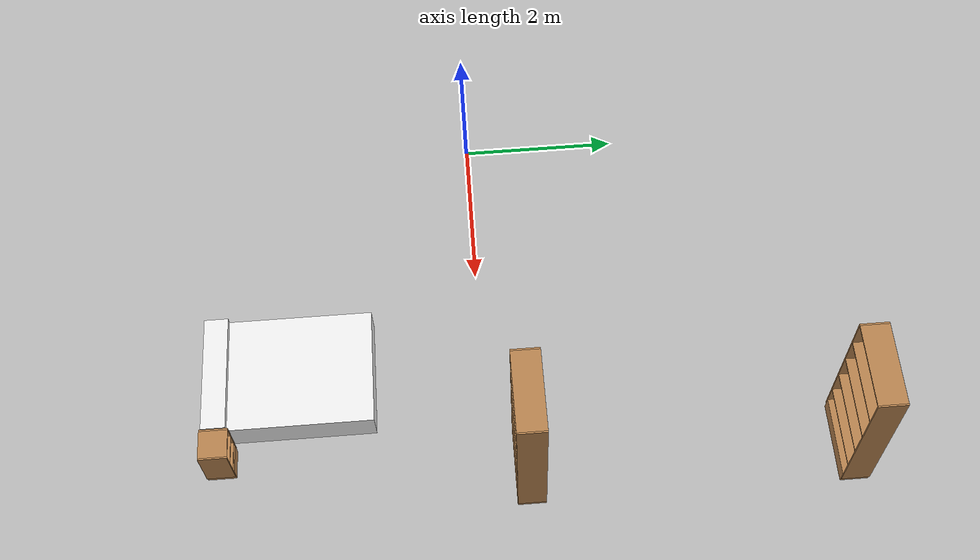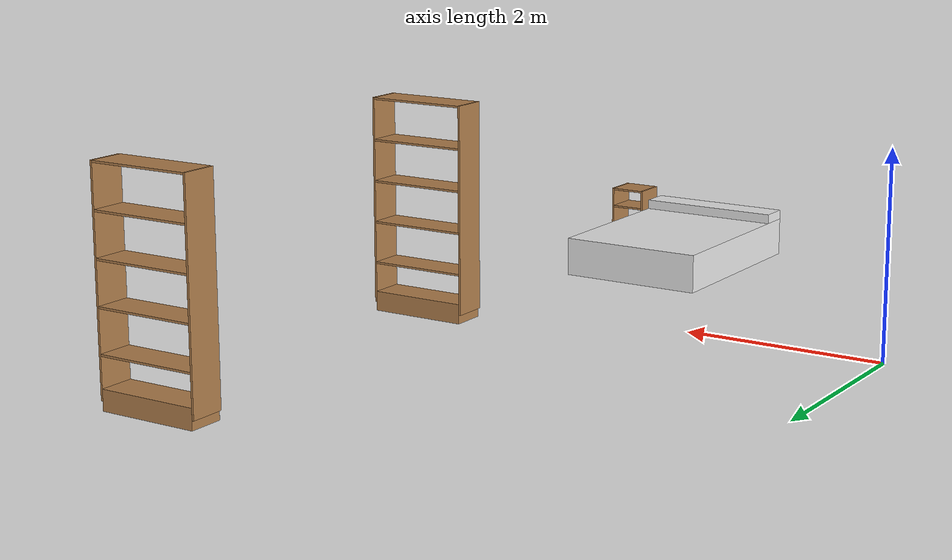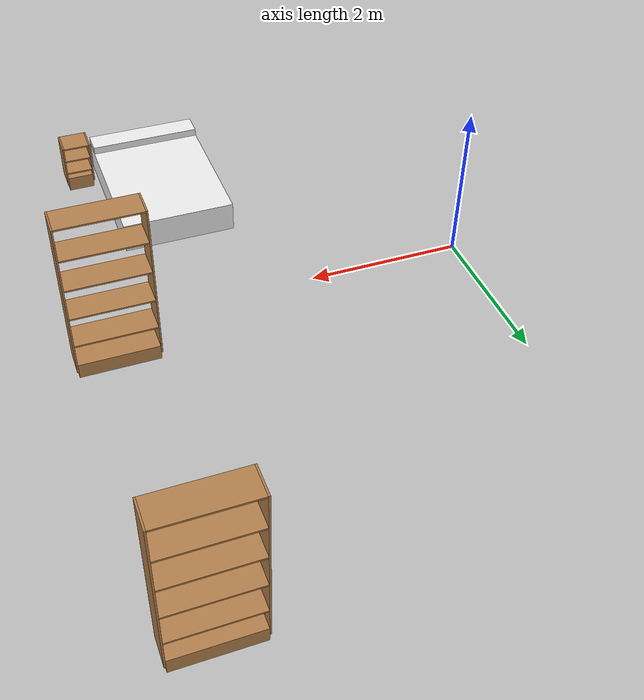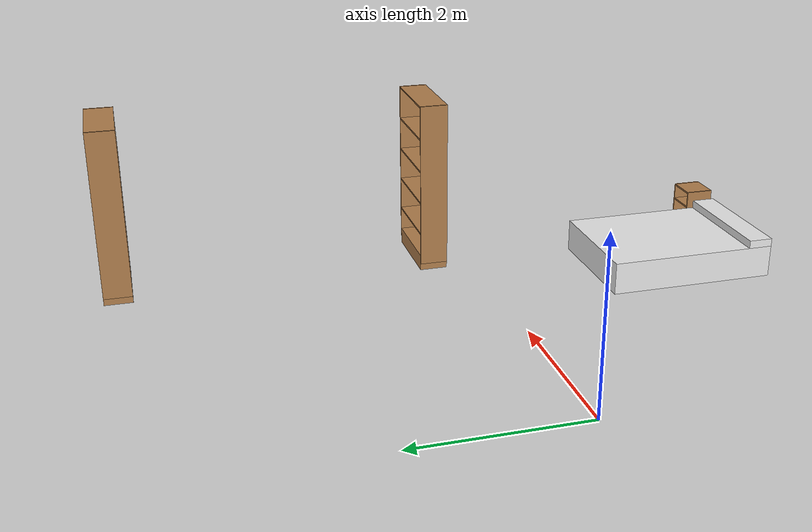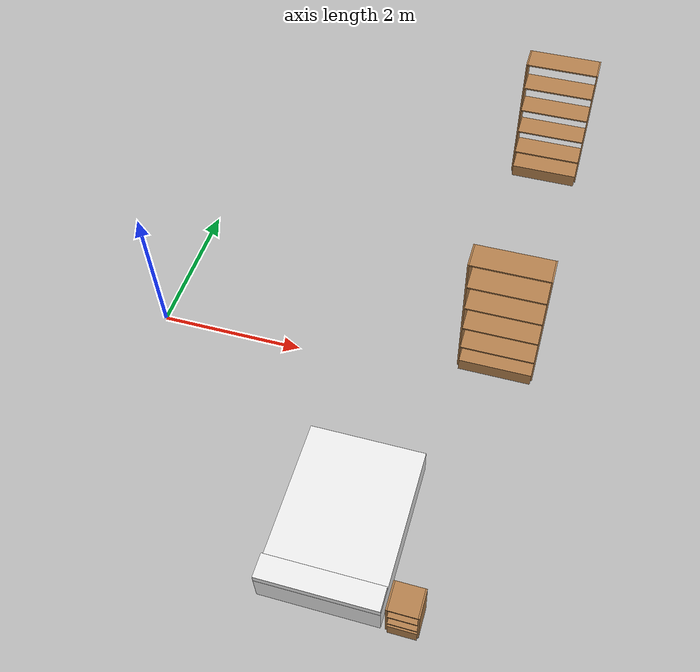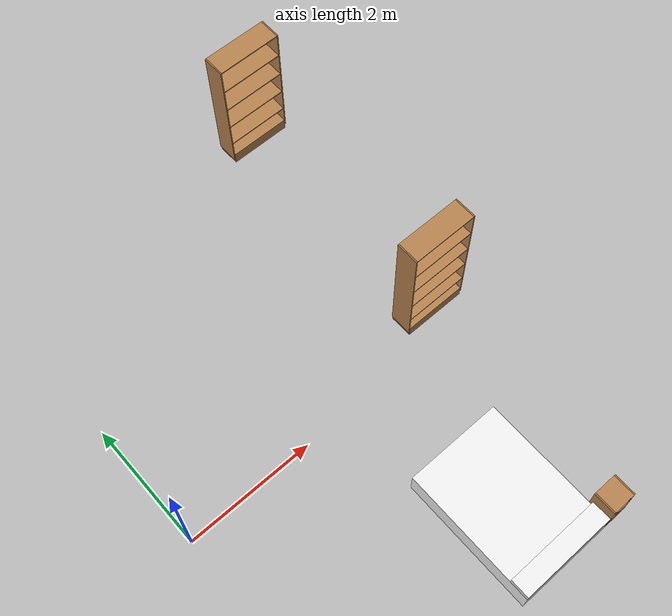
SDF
<sdf version="1.4">
 <model name="house_int2_roof">
  <model name="estanteria_1">
   <static>true</static>
   <link name="estanteria_link">
    <inertial>
     <pose>0 0 1.046 0 -0 0</pose>
     <mass>100</mass>
     <inertia><ixx>3.12544</ixx><ixy>0</ixy><ixz>0</ixz><iyy>4.16584</iyy><iyz>0</iyz><izz>1.1204</izz></inertia>
    </inertial>
    <collision name="estanteria_link_collision">
     <pose>0 0 0.01 0 -0 0</pose>
     <geometry><box><size>1 0.35 0.02</size></box></geometry>
     <surface><friction><ode><mu>1</mu><mu2>1</mu2></ode></friction></surface>
    </collision>
    <collision name="estanteria_link_collision_basal_1_link">
     <pose>0 0 0.41 0 -0 0</pose>
     <geometry><box><size>1 0.35 0.2</size></box></geometry>
     <surface><friction><ode><mu>1</mu><mu2>1</mu2></ode></friction></surface>
     <surface><friction><ode><mu>1</mu><mu2>1</mu2></ode></friction></surface>
    </collision>
    <collision name="estanteria_link_collision_basal_2_link">
     <pose>0 0 0.83 0 -0 0</pose>
     <geometry><box><size>1 0.35 0.02</size></box></geometry>
     <surface><friction><ode><mu>1</mu><mu2>1</mu2></ode></friction></surface>
     <surface><friction><ode><mu>1</mu><mu2>1</mu2></ode></friction></surface>
    </collision>
    <collision name="estanteria_link_collision_basal_3_link">
     <pose>0 0 1.25 0 -0 0</pose>
     <geometry><box><size>1 0.35 0.02</size></box></geometry>
     <surface><friction><ode><mu>1</mu><mu2>1</mu2></ode></friction></surface>
     <surface><friction><ode><mu>1</mu><mu2>1</mu2></ode></friction></surface>
    </collision>
    <collision name="estanteria_link_collision_basal_4_link">
     <pose>0 0 1.67 0 -0 0</pose>
     <geometry><box><size>1 0.35 0.02</size></box></geometry>
     <surface><friction><ode><mu>1</mu><mu2>1</mu2></ode></friction></surface>
     <surface><friction><ode><mu>1</mu><mu2>1</mu2></ode></friction></surface>
    </collision>
    <collision name="estanteria_link_collision_basal_5_link">
     <pose>0 0 2.09 0 -0 0</pose>
     <geometry><box><size>1 0.35 0.02</size></box></geometry>
     <surface><friction><ode><mu>1</mu><mu2>1</mu2></ode></friction></surface>
     <surface><friction><ode><mu>1</mu><mu2>1</mu2></ode></friction></surface>
    </collision>
    <collision name="estanteria_link_collision_lateral_1_link">
     <pose>0.51 0 1.05 0 -0 0</pose>
     <geometry><box><size>0.02 0.35 2.1</size></box></geometry>
     <surface><friction><ode><mu>1</mu><mu2>1</mu2></ode></friction></surface>
     <surface><friction><ode><mu>1</mu><mu2>1</mu2></ode></friction></surface>
    </collision>
    <collision name="estanteria_link_collision_lateral_2_link">
     <pose>-0.51 0 1.05 0 -0 0</pose>
     <geometry><box><size>0.02 0.35 2.1</size></box></geometry>
     <surface><friction><ode><mu>1</mu><mu2>1</mu2></ode></friction></surface>
     <surface><friction><ode><mu>1</mu><mu2>1</mu2></ode></friction></surface>
    </collision>
    <visual name="estanteria_link_visual">
     <pose>0 0 0.01 0 -0 0</pose>
     <geometry><box><size>1 0.35 0.2</size></box></geometry>
     <material><script><name>Gazebo/Wood</name><uri>__default__</uri></script></material>
    </visual>
    <visual name="estanteria_link_visual_basal_1_link">
     <pose>0 0 0.41 0 -0 0</pose>
     <geometry><box><size>1 0.35 0.02</size></box></geometry>
     <material><script><name>Gazebo/Wood</name><uri>__default__</uri></script></material>
    </visual>
    <visual name="estanteria_link_visual_basal_2_link">
     <pose>0 0 0.83 0 -0 0</pose>
     <geometry><box><size>1 0.35 0.02</size></box></geometry>
     <material><script><name>Gazebo/Wood</name><uri>__default__</uri></script></material>
    </visual>
    <visual name="estanteria_link_visual_basal_3_link">
     <pose>0 0 1.25 0 -0 0</pose>
     <geometry><box><size>1 0.35 0.02</size></box></geometry>
     <material><script><name>Gazebo/Wood</name><uri>__default__</uri></script></material>
    </visual>
    <visual name="estanteria_link_visual_basal_4_link">
     <pose>0 0 1.67 0 -0 0</pose>
     <geometry><box><size>1 0.35 0.02</size></box></geometry>
     <material><script><name>Gazebo/Wood</name><uri>__default__</uri></script></material>
    </visual>
    <visual name="estanteria_link_visual_basal_5_link">
     <pose>0 0 2.09 0 -0 0</pose>
     <geometry><box><size>1 0.35 0.02</size></box></geometry>
     <material><script><name>Gazebo/Wood</name><uri>__default__</uri></script></material>
    </visual>
    <visual name="estanteria_link_visual_lateral_1_link">
     <pose>0.51 0 1.05 0 -0 0</pose>
     <geometry><box><size>0.02 0.35 2.1</size></box></geometry>
     <material><script><name>Gazebo/Wood</name><uri>__default__</uri></script></material>
    </visual>
    <visual name="estanteria_link_visual_lateral_2_link">
     <pose>-0.51 0 1.05 0 -0 0</pose>
     <geometry><box><size>0.02 0.35 2.1</size></box></geometry>
     <material><script><name>Gazebo/Wood</name><uri>__default__</uri></script></material>
    </visual>
    <velocity_decay><linear>0</linear><angular>0</angular></velocity_decay>
    <velocity_decay><linear>0</linear><angular>0</angular></velocity_decay>
    <velocity_decay><linear>0</linear><angular>0</angular></velocity_decay>
    <velocity_decay><linear>0</linear><angular>0</angular></velocity_decay>
    <velocity_decay><linear>0</linear><angular>0</angular></velocity_decay>
    <velocity_decay><linear>0</linear><angular>0</angular></velocity_decay>
    <velocity_decay><linear>0</linear><angular>0</angular></velocity_decay>
    <velocity_decay><linear>0</linear><angular>0</angular></velocity_decay>
    <self_collide>1</self_collide>
   </link>
   <pose>4.7 4.48 0 0 -0 0</pose>
   <static>0</static>
  </model>
  <model name="estanteria_2">
   <static>true</static>
   <link name="estanteria_link">
    <inertial>
     <pose>0 0 1.046 0 -0 0</pose>
     <mass>100</mass>
     <inertia><ixx>3.12544</ixx><ixy>0</ixy><ixz>0</ixz><iyy>4.16584</iyy><iyz>0</iyz><izz>1.1204</izz></inertia>
    </inertial>
    <collision name="estanteria_link_collision">
     <pose>0 0 0.01 0 -0 0</pose>
     <geometry><box><size>1 0.35 0.02</size></box></geometry>
     <surface><friction><ode><mu>1</mu><mu2>1</mu2></ode></friction></surface>
    </collision>
    <collision name="estanteria_link_collision_basal_1_link">
     <pose>0 0 0.41 0 -0 0</pose>
     <geometry><box><size>1 0.35 0.02</size></box></geometry>
     <surface><friction><ode><mu>1</mu><mu2>1</mu2></ode></friction></surface>
     <surface><friction><ode><mu>1</mu><mu2>1</mu2></ode></friction></surface>
    </collision>
    <collision name="estanteria_link_collision_basal_2_link">
     <pose>0 0 0.83 0 -0 0</pose>
     <geometry><box><size>1 0.35 0.02</size></box></geometry>
     <surface><friction><ode><mu>1</mu><mu2>1</mu2></ode></friction></surface>
     <surface><friction><ode><mu>1</mu><mu2>1</mu2></ode></friction></surface>
    </collision>
    <collision name="estanteria_link_collision_basal_3_link">
     <pose>0 0 1.25 0 -0 0</pose>
     <geometry><box><size>1 0.35 0.02</size></box></geometry>
     <surface><friction><ode><mu>1</mu><mu2>1</mu2></ode></friction></surface>
     <surface><friction><ode><mu>1</mu><mu2>1</mu2></ode></friction></surface>
    </collision>
    <collision name="estanteria_link_collision_basal_4_link">
     <pose>0 0 1.67 0 -0 0</pose>
     <geometry><box><size>1 0.35 0.02</size></box></geometry>
     <surface><friction><ode><mu>1</mu><mu2>1</mu2></ode></friction></surface>
     <surface><friction><ode><mu>1</mu><mu2>1</mu2></ode></friction></surface>
    </collision>
    <collision name="estanteria_link_collision_basal_5_link">
     <pose>0 0 2.09 0 -0 0</pose>
     <geometry><box><size>1 0.35 0.02</size></box></geometry>
     <surface><friction><ode><mu>1</mu><mu2>1</mu2></ode></friction></surface>
     <surface><friction><ode><mu>1</mu><mu2>1</mu2></ode></friction></surface>
    </collision>
    <collision name="estanteria_link_collision_lateral_1_link">
     <pose>0.51 0 1.05 0 -0 0</pose>
     <geometry><box><size>0.02 0.35 2.1</size></box></geometry>
     <surface><friction><ode><mu>1</mu><mu2>1</mu2></ode></friction></surface>
     <surface><friction><ode><mu>1</mu><mu2>1</mu2></ode></friction></surface>
    </collision>
    <collision name="estanteria_link_collision_lateral_2_link">
     <pose>-0.51 0 1.05 0 -0 0</pose>
     <geometry><box><size>0.02 0.35 2.1</size></box></geometry>
     <surface><friction><ode><mu>1</mu><mu2>1</mu2></ode></friction></surface>
     <surface><friction><ode><mu>1</mu><mu2>1</mu2></ode></friction></surface>
    </collision>
    <visual name="estanteria_link_visual">
     <pose>0 0 0.01 0 -0 0</pose>
     <geometry><box><size>1 0.35 0.2</size></box></geometry>
     <material><script><name>Gazebo/Wood</name><uri>__default__</uri></script></material>
    </visual>
    <visual name="estanteria_link_visual_basal_1_link">
     <pose>0 0 0.41 0 -0 0</pose>
     <geometry><box><size>1 0.35 0.02</size></box></geometry>
     <material><script><name>Gazebo/Wood</name><uri>__default__</uri></script></material>
    </visual>
    <visual name="estanteria_link_visual_basal_2_link">
     <pose>0 0 0.83 0 -0 0</pose>
     <geometry><box><size>1 0.35 0.02</size></box></geometry>
     <material><script><name>Gazebo/Wood</name><uri>__default__</uri></script></material>
    </visual>
    <visual name="estanteria_link_visual_basal_3_link">
     <pose>0 0 1.25 0 -0 0</pose>
     <geometry><box><size>1 0.35 0.02</size></box></geometry>
     <material><script><name>Gazebo/Wood</name><uri>__default__</uri></script></material>
    </visual>
    <visual name="estanteria_link_visual_basal_4_link">
     <pose>0 0 1.67 0 -0 0</pose>
     <geometry><box><size>1 0.35 0.02</size></box></geometry>
     <material><script><name>Gazebo/Wood</name><uri>__default__</uri></script></material>
    </visual>
    <visual name="estanteria_link_visual_basal_5_link">
     <pose>0 0 2.09 0 -0 0</pose>
     <geometry><box><size>1 0.35 0.02</size></box></geometry>
     <material><script><name>Gazebo/Wood</name><uri>__default__</uri></script></material>
    </visual>
    <visual name="estanteria_link_visual_lateral_1_link">
     <pose>0.51 0 1.05 0 -0 0</pose>
     <geometry><box><size>0.02 0.35 2.1</size></box></geometry>
     <material><script><name>Gazebo/Wood</name><uri>__default__</uri></script></material>
    </visual>
    <visual name="estanteria_link_visual_lateral_2_link">
     <pose>-0.51 0 1.05 0 -0 0</pose>
     <geometry><box><size>0.02 0.35 2.1</size></box></geometry>
     <material><script><name>Gazebo/Wood</name><uri>__default__</uri></script></material>
    </visual>
    <velocity_decay><linear>0</linear><angular>0</angular></velocity_decay>
    <velocity_decay><linear>0</linear><angular>0</angular></velocity_decay>
    <velocity_decay><linear>0</linear><angular>0</angular></velocity_decay>
    <velocity_decay><linear>0</linear><angular>0</angular></velocity_decay>
    <velocity_decay><linear>0</linear><angular>0</angular></velocity_decay>
    <velocity_decay><linear>0</linear><angular>0</angular></velocity_decay>
    <velocity_decay><linear>0</linear><angular>0</angular></velocity_decay>
    <velocity_decay><linear>0</linear><angular>0</angular></velocity_decay>
    <self_collide>1</self_collide>
   </link>
   <pose>4.7 0.5 0 0 -0 0</pose>
   <static>0</static>
  </model>
  <model name="cama">
   <static>true</static>
   <link name="cama_link">
    <inertial>
     <pose>0.0176471 0 0.204902 0 -0 0</pose>
     <mass>510</mass>
     <inertia>
      <ixx>10.1613</ixx>
      <ixy>0</ixy>
      <ixz>-0.220588</ixz>
      <iyy>10.9554</iyy>
      <iyz>0</iyz>
      <izz>10.8941</izz>
     </inertia>
    </inertial>
    <collision name="cama_link_collision">
     <pose>0 0 0.2 0 -0 0</pose>
     <geometry><box><size>2.1 1.5 0.4</size></box></geometry>
     <surface><friction><ode><mu>1</mu><mu2>1</mu2></ode></friction></surface>
    </collision>
    <collision name="cama_link_collision_almohada_link">
     <pose>0.9 0 0.45 0 -0 0</pose>
     <geometry><box><size>0.3 1.5 0.1</size></box></geometry>
     <surface><friction><ode><mu>1</mu><mu2>1</mu2></ode></friction></surface>
     <surface><friction><ode><mu>1</mu><mu2>1</mu2></ode></friction></surface>
    </collision>
    <visual name="cama_link_visual">
     <pose>0 0 0.2 0 -0 0</pose>
     <geometry><box><size>2.1 1.5 0.4</size></box></geometry>
     <material><script><name>Gazebo/White</name><uri>__default__</uri></script></material>
    </visual>
    <visual name="cama_link_visual_almohada_link">
     <pose>0.9 0 0.45 0 -0 0</pose>
     <geometry><box><size>0.3 1.5 0.1</size></box></geometry>
     <material><script><name>Gazebo/White</name><uri>__default__</uri></script></material>
    </visual>
    <velocity_decay><linear>0</linear><angular>0</angular></velocity_decay>
    <velocity_decay><linear>0</linear><angular>0</angular></velocity_decay>
    <self_collide>1</self_collide>
   </link>
   <pose>3.4 -2.41 0 0 0 -1.57</pose>
   <static>0</static>
  </model>
  <model name="mesita_2">
   <static>true</static>
   <link name="mesita_link">
    <inertial>
     <pose>0 0 0.2975 0 -0 0</pose>
     <mass>80</mass>
     <inertia><ixx>0.24835</ixx><ixy>0</ixy><ixz>0</ixz><iyy>0.38525</iyy><iyz>0</iyz><izz>0.1969</izz></inertia>
    </inertial>
    <collision name="mesita_link_collision">
     <pose>0 0 0.01 0 -0 0</pose>
     <geometry><box><size>0.35 0.35 0.02</size></box></geometry>
     <surface><friction><ode><mu>1</mu><mu2>1</mu2></ode></friction></surface>
    </collision>
    <collision name="mesita_link_collision_basal_1_link">
     <pose>0 0 0.19 0 -0 0</pose>
     <geometry><box><size>0.35 0.35 0.02</size></box></geometry>
     <surface><friction><ode><mu>1</mu><mu2>1</mu2></ode></friction></surface>
     <surface><friction><ode><mu>1</mu><mu2>1</mu2></ode></friction></surface>
    </collision>
    <collision name="mesita_link_collision_basal_2_link">
     <pose>0 0 0.39 0 -0 0</pose>
     <geometry><box><size>0.35 0.35 0.02</size></box></geometry>
     <surface><friction><ode><mu>1</mu><mu2>1</mu2></ode></friction></surface>
     <surface><friction><ode><mu>1</mu><mu2>1</mu2></ode></friction></surface>
    </collision>
    <collision name="mesita_link_collision_basal_3_link">
     <pose>0 0 0.59 0 -0 0</pose>
     <geometry><box><size>0.35 0.35 0.02</size></box></geometry>
     <surface><friction><ode><mu>1</mu><mu2>1</mu2></ode></friction></surface>
     <surface><friction><ode><mu>1</mu><mu2>1</mu2></ode></friction></surface>
    </collision>
    <collision name="mesita_link_collision_lateral_1_link">
     <pose>0.185 0 0.3 0 -0 0</pose>
     <geometry><box><size>0.02 0.35 0.6</size></box></geometry>
     <surface><friction><ode><mu>1</mu><mu2>1</mu2></ode></friction></surface>
     <surface><friction><ode><mu>1</mu><mu2>1</mu2></ode></friction></surface>
    </collision>
    <collision name="mesita_link_collision_lateral_2_link">
     <pose>-0.185 0 0.3 0 -0 0</pose>
     <geometry><box><size>0.02 0.35 0.6</size></box></geometry>
     <surface><friction><ode><mu>1</mu><mu2>1</mu2></ode></friction></surface>
     <surface><friction><ode><mu>1</mu><mu2>1</mu2></ode></friction></surface>
    </collision>
    <visual name="mesita_link_visual">
     <pose>0 0 0.01 0 -0 0</pose>
     <geometry><box><size>0.35 0.35 0.2</size></box></geometry>
     <material><script><name>Gazebo/Wood</name><uri>__default__</uri></script></material>
    </visual>
    <visual name="mesita_link_visual_basal_1_link">
     <pose>0 0 0.19 0 -0 0</pose>
     <geometry><box><size>0.35 0.35 0.02</size></box></geometry>
     <material><script><name>Gazebo/Wood</name><uri>__default__</uri></script></material>
    </visual>
    <visual name="mesita_link_visual_basal_2_link">
     <pose>0 0 0.39 0 -0 0</pose>
     <geometry><box><size>0.35 0.35 0.02</size></box></geometry>
     <material><script><name>Gazebo/Wood</name><uri>__default__</uri></script></material>
    </visual>
    <visual name="mesita_link_visual_basal_3_link">
     <pose>0 0 0.59 0 -0 0</pose>
     <geometry><box><size>0.35 0.35 0.02</size></box></geometry>
     <material><script><name>Gazebo/Wood</name><uri>__default__</uri></script></material>
    </visual>
    <visual name="mesita_link_visual_lateral_1_link">
     <pose>0.185 0 0.3 0 -0 0</pose>
     <geometry><box><size>0.02 0.35 0.6</size></box></geometry>
     <material><script><name>Gazebo/Wood</name><uri>__default__</uri></script></material>
    </visual>
    <visual name="mesita_link_visual_lateral_2_link">
     <pose>-0.185 0 0.3 0 -0 0</pose>
     <geometry><box><size>0.02 0.35 0.6</size></box></geometry>
     <material><script><name>Gazebo/Wood</name><uri>__default__</uri></script></material>
    </visual>
    <velocity_decay><linear>0</linear><angular>0</angular></velocity_decay>
    <velocity_decay><linear>0</linear><angular>0</angular></velocity_decay>
    <velocity_decay><linear>0</linear><angular>0</angular></velocity_decay>
    <velocity_decay><linear>0</linear><angular>0</angular></velocity_decay>
    <velocity_decay><linear>0</linear><angular>0</angular></velocity_decay>
    <velocity_decay><linear>0</linear><angular>0</angular></velocity_decay>
    <self_collide>1</self_collide>
   </link>
   <pose>4.4 -3.28 0 0 -0 0</pose>
   <static>0</static>
  </model>
 </model>
</sdf>
